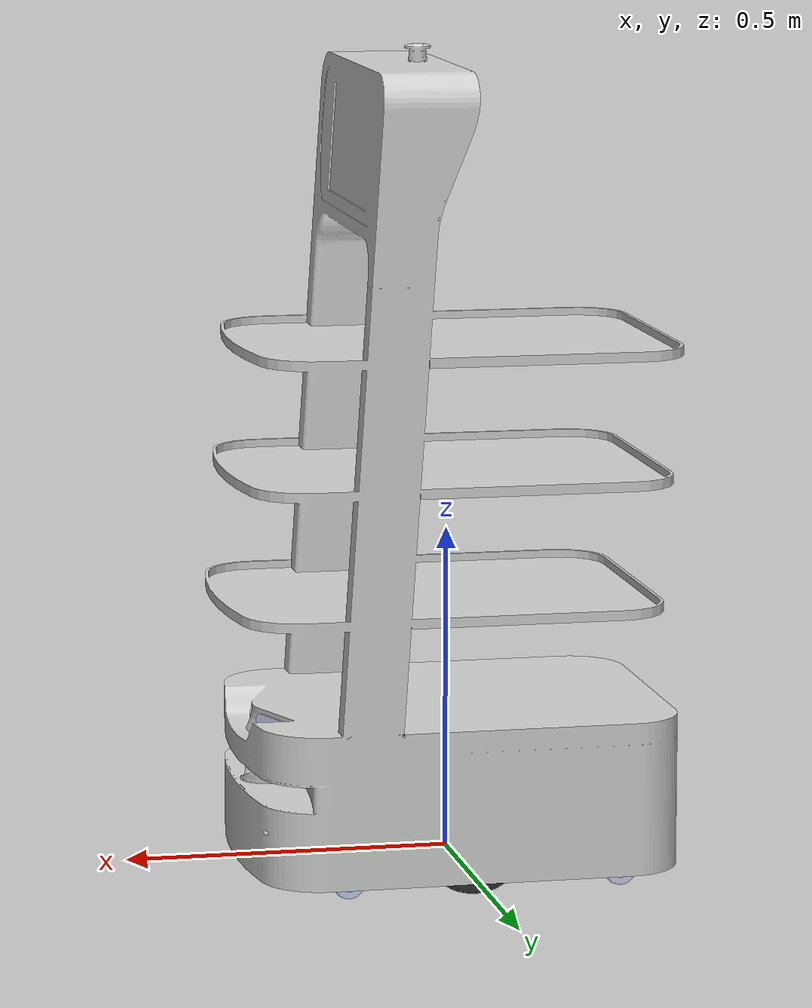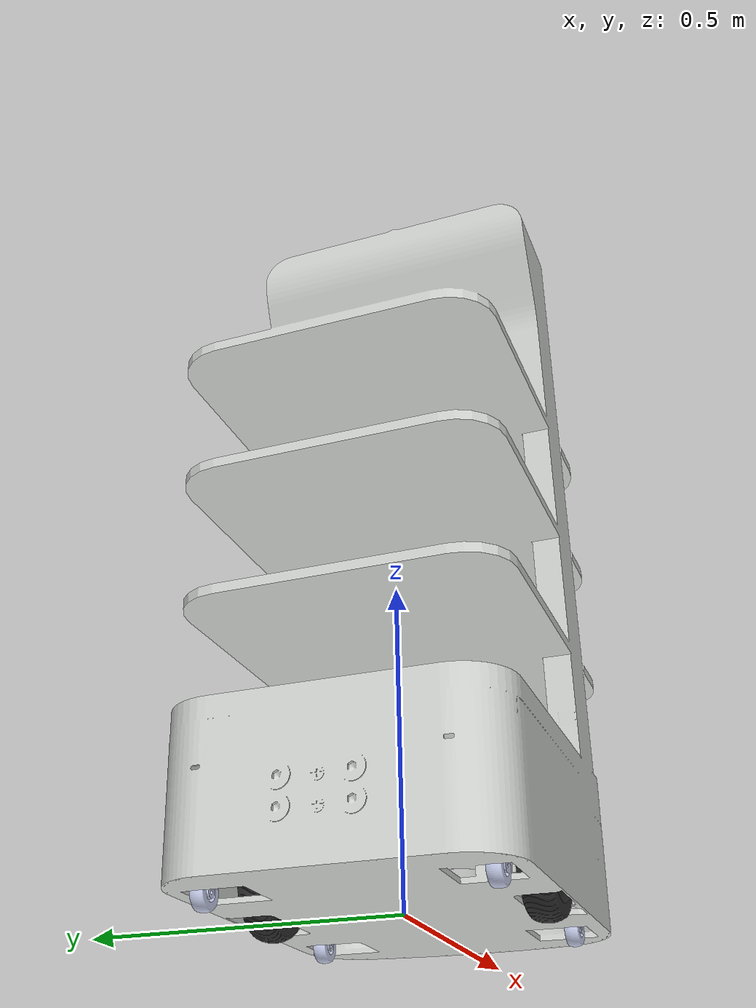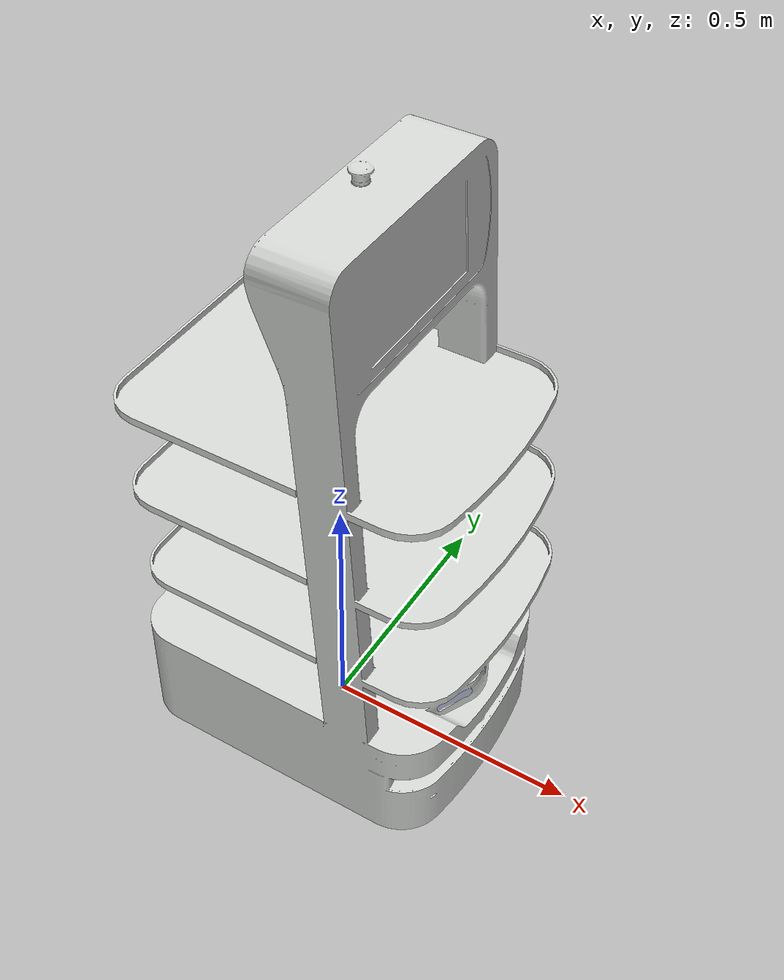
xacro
<?xml version="1.0"?>
<robot xmlns:xacro="http://www.ros.org/wiki/xacro" name="d_bot">

    <xacro:macro name="default_inertial" params="mass">
        <inertial>
            <mass value="${mass}" />
            <inertia ixx="1.0" ixy="0.0" ixz="0.0" iyy="1.0" iyz="0.0" izz="1.0" />
        </inertial>
    </xacro:macro>

    <!-- using inertial  -->

  <!-- base_link -->
  <link
    name="base_link">
    <xacro:default_inertial mass="100"/>
    <visual>
      <origin
        xyz="0 0 0"
        rpy="0 0 0" />
      <geometry>
        <mesh
          filename="package://d_bot_description/meshes/base_link.STL" />
      </geometry>
      <material
        name="">
        <color
          rgba="0.827450980392157 0.83921568627451 0.827450980392157 1" />
      </material>
    </visual>
    <collision>
      <origin
        xyz="0 0 0"
        rpy="0 0 0" />
      <geometry>
        <mesh
          filename="package://d_bot_description/meshes/base_link.STL" />
      </geometry>
    </collision>
  </link>

  <!-- lidar link and joint -->
  <link
    name="lidar_link">
    <inertial>
      <origin
        xyz="0.279194541394812 -1.49381448597552E-05 0.122298548059415"
        rpy="0 0 0" />
      <mass
        value="0.165382751635992" />
      <inertia
        ixx="7.88651836105336E-05"
        ixy="4.84717640920877E-08"
        ixz="2.18479443959794E-06"
        iyy="7.51902914938724E-05"
        iyz="2.88601572510436E-08"
        izz="0.000109946753058708" />
    </inertial>
    <visual>
      <origin
        xyz="-0.279194541394812 1.49381448597552E-05 -0.122298548059415"
        rpy="0 0 0" />
      <geometry>
        <mesh
          filename="package://d_bot_description/meshes/lidar_link.STL" />
      </geometry>
      <material
        name="">
        <color
          rgba="0.752941176470588 0.752941176470588 0.752941176470588 0.4" />
      </material>
    </visual>
    <collision>
      <origin
        xyz="-0.279194541394812 1.49381448597552E-05 -0.122298548059415"
        rpy="0 0 0" />
      <geometry>
        <mesh
          filename="package://d_bot_description/meshes/lidar_link.STL" />
      </geometry>
    </collision>
  </link>
  <joint
    name="lidar_link_joint"
    type="fixed">
    <origin
      xyz="0.279194541394812 -1.49381448597552E-05 0.122298548059415"
      rpy="0 0 0" />
    <parent
      link="base_link" />
    <child
      link="lidar_link" />
    <axis
      xyz="1 0 0" />
  </joint>

  <!-- real_sense_left link and joint -->
  <link
    name="rs_left">
    <inertial>
      <origin
        xyz="0.274555027589029 0.0594512444419123 0.217391938332195"
        rpy="0 0 0" />
      <mass
        value="0.0447521571009435" />
      <inertia
        ixx="2.39114045668301E-05"
        ixy="8.20326286217048E-06"
        ixz="-1.82111380306059E-08"
        iyy="7.31204727336871E-06"
        iyz="1.80836025822923E-08"
        izz="2.73608190095255E-05" />
    </inertial>
    <visual>
      <origin
        xyz="-0.274555027589029 -0.0594512444419123 -0.217391938332195"
        rpy="0 0 0" />
      <geometry>
        <mesh
          filename="package://d_bot_description/meshes/rs_left.STL" />
      </geometry>
      <material
        name="">
        <color
          rgba="0.792156862745098 0.819607843137255 0.933333333333333 1" />
      </material>
    </visual>
    <collision>
      <origin
        xyz="-0.274555027589029 -0.0594512444419123 -0.217391938332195"
        rpy="0 0 0" />
      <geometry>
        <mesh
          filename="package://d_bot_description/meshes/rs_left.STL" />
      </geometry>
    </collision>
  </link>
  <joint
    name="rs_left_joint"
    type="fixed">
    <origin
      xyz="0.274555027589029 0.0594512444419123 0.217391938332195"
      rpy="0 0 0" />
    <parent
      link="base_link" />
    <child
      link="rs_left" />
    <axis
      xyz="0 0 0" />
  </joint>

  <!-- real_sense_right link and joint -->
  <link
    name="rs_right">
    <inertial>
      <origin
        xyz="0.273134158939021 -0.0563363041663852 0.215391956342575"
        rpy="0 0 0" />
      <mass
        value="0.0447522720440084" />
      <inertia
        ixx="2.28893414689802E-05"
        ixy="-9.12224588442263E-06"
        ixz="1.2674636414842E-09"
        iyy="8.33417328604517E-06"
        iyz="2.56207062416853E-08"
        izz="2.73608662757534E-05" />
    </inertial>
    <visual>
      <origin
        xyz="-0.273134158939021 0.0563363041663852 -0.215391956342575"
        rpy="0 0 0" />
      <geometry>
        <mesh
          filename="package://d_bot_description/meshes/rs_right.STL" />
      </geometry>
      <material
        name="">
        <color
          rgba="0.792156862745098 0.819607843137255 0.933333333333333 1" />
      </material>
    </visual>
    <collision>
      <origin
        xyz="-0.273134158939021 0.0563363041663852 -0.215391956342575"
        rpy="0 0 0" />
      <geometry>
        <mesh
          filename="package://d_bot_description/meshes/rs_right.STL" />
      </geometry>
    </collision>
  </link>
  <joint
    name="rs_right_joint"
    type="fixed">
    <origin
      xyz="0.273134158939021 -0.0563363041663852 0.215391956342575"
      rpy="0 0 0" />
    <parent
      link="base_link" />
    <child
      link="rs_right" />
    <axis
      xyz="0 0 0" />
  </joint>

  <!-- caster_front_left link and joint -->
  <link
    name="caster_fl">
    <xacro:default_inertial mass="100"/>
    <visual>
      <origin
        xyz="-0.191862541507397 -0.197610528427432 -0.00130276285386216"
        rpy="0 0 0" />
      <geometry>
        <mesh
          filename="package://d_bot_description/meshes/caster_fl.STL" />
      </geometry>
      <material
        name="">
        <color
          rgba="0.792156862745098 0.819607843137255 0.933333333333333 1" />
      </material>
    </visual>
    <collision>
      <origin
        xyz="-0.191862541507397 -0.197610528427432 -0.00130276285386216"
        rpy="0 0 0" />
      <geometry>
        <mesh
          filename="package://d_bot_description/meshes/caster_fl.STL" />
      </geometry>
    </collision>
  </link>
  <joint
    name="caster_fl_joint"
    type="continuous">
    <origin
      xyz="0.191862541507397 0.197610528427432 0.00130276285386216"
      rpy="0 0 0" />
    <parent
      link="base_link" />
    <child
      link="caster_fl" />
    <axis
      xyz="0 1 0" />
  </joint>

  <!-- caster_front_right link and joint -->
  <link
    name="caster_fr">
    <xacro:default_inertial mass="100"/>
    <visual>
      <origin
        xyz="-0.191862541507396 0.197389471572568 -0.0013027628538621"
        rpy="0 0 0" />
      <geometry>
        <mesh
          filename="package://d_bot_description/meshes/caster_fr.STL" />
      </geometry>
      <material
        name="">
        <color
          rgba="0.792156862745098 0.819607843137255 0.933333333333333 1" />
      </material>
    </visual>
    <collision>
      <origin
        xyz="-0.191862541507396 0.197389471572568 -0.0013027628538621"
        rpy="0 0 0" />
      <geometry>
        <mesh
          filename="package://d_bot_description/meshes/caster_fr.STL" />
      </geometry>
    </collision>
  </link>
  <joint
    name="caster_fr_joint"
    type="continuous">
    <origin
      xyz="0.191862541507396 -0.197389471572568 0.0013027628538621"
      rpy="0 0 0" />
    <parent
      link="base_link" />
    <child
      link="caster_fr" />
    <axis
      xyz="0 1 0" />
  </joint>

<!-- caster_rear_right link and joint -->
  <link
    name="caster_rr">
    <xacro:default_inertial mass="100"/>
    <visual>
      <origin
        xyz="0.228137458492605 0.197389471572567 -0.00130276285386094"
        rpy="0 0 0" />
      <geometry>
        <mesh
          filename="package://d_bot_description/meshes/caster_rr.STL" />
      </geometry>
      <material
        name="">
        <color
          rgba="0.792156862745098 0.819607843137255 0.933333333333333 1" />
      </material>
    </visual>
    <collision>
      <origin
        xyz="0.228137458492605 0.197389471572567 -0.00130276285386094"
        rpy="0 0 0" />
      <geometry>
        <mesh
          filename="package://d_bot_description/meshes/caster_rr.STL" />
      </geometry>
    </collision>
  </link>
  <joint
    name="caster_rr_joint"
    type="continuous">
    <origin
      xyz="-0.228137458492605 -0.197389471572567 0.00130276285386094"
      rpy="0 0 0" />
    <parent
      link="base_link" />
    <child
      link="caster_rr" />
    <axis
      xyz="0 1 0" />
  </joint>

  <!-- caster_rear_left link and joint -->
  <link
    name="caster_rl">
    <xacro:default_inertial mass="100"/>
    <visual>
      <origin
        xyz="0.228137458492603 -0.197610528427433 -0.00130276285386072"
        rpy="0 0 0" />
      <geometry>
        <mesh
          filename="package://d_bot_description/meshes/caster_rl.STL" />
      </geometry>
      <material
        name="">
        <color
          rgba="0.792156862745098 0.819607843137255 0.933333333333333 1" />
      </material>
    </visual>
    <collision>
      <origin
        xyz="0.228137458492603 -0.197610528427433 -0.00130276285386072"
        rpy="0 0 0" />
      <geometry>
        <mesh
          filename="package://d_bot_description/meshes/caster_rl.STL" />
      </geometry>
    </collision>
  </link>
  <joint
    name="caster_rl_joint"
    type="continuous">
    <origin
      xyz="-0.228137458492603 0.197610528427433 0.00130276285386072"
      rpy="0 0 0" />
    <parent
      link="base_link" />
    <child
      link="caster_rl" />
    <axis
      xyz="0 1 0" />
  </joint>

  <!-- drive_wheel_left_link and joint -->
  <link
    name="drive_wheel_left">
    <xacro:default_inertial mass="120"/>
    <visual>
      <origin
        xyz="7.34417430403589E-06 -0.204110516837841 -0.0500007440772356"
        rpy="0 0 0" />
      <geometry>
        <mesh
          filename="package://d_bot_description/meshes/drive_wheel_left.STL" />
      </geometry>
      <material
        name="">
        <color
          rgba="0.2 0.2 0.2 1" />
      </material>
    </visual>
    <collision>
      <origin
        xyz="7.34417430403589E-06 -0.204110516837841 -0.0500007440772356"
        rpy="0 0 0" />
      <geometry>
        <mesh
          filename="package://d_bot_description/meshes/drive_wheel_left.STL" />
      </geometry>
    </collision>
  </link>
  <!-- xyz="-7.34417430403589E-06 0.204110516837841 0.0500007440772356" -->
  <joint
    name="drive_wheel_left_joint"
    type="continuous">
    <origin
      xyz="-7.34417430403589E-06 0.204110516837841 0.0578240000"
      rpy="0 0 0" />
    <parent
      link="base_link" />
    <child
      link="drive_wheel_left" />
    <axis
      xyz="0 1 0" />
  </joint>

  <!-- drive_wheel_right_link and joint -->
  <link
    name="drive_wheel_right">
    <xacro:default_inertial mass="120"/>
    <visual>
      <origin
        xyz="-7.34417430392487E-06 0.204110516837841 -0.0500007440772355"
        rpy="0 0 0" />
      <geometry>
        <mesh
          filename="package://d_bot_description/meshes/drive_wheel_right.STL" />
      </geometry>
      <material
        name="">
        <color
          rgba="0.2 0.2 0.2 1" />
      </material>
    </visual>
    <collision>
      <origin
        xyz="-7.34417430392487E-06 0.204110516837841 -0.0500007440772355"
        rpy="0 0 0" />
      <geometry>
        <mesh
          filename="package://d_bot_description/meshes/drive_wheel_right.STL" />
      </geometry>
    </collision>
  </link>
  <joint
    name="drive_wheel_right_joint"
    type="continuous">
    <origin
      xyz="7.34417430392487E-06 -0.204110516837841 0.0578240000"
      rpy="0 0 0" />
    <parent
      link="base_link" />
    <child
      link="drive_wheel_right" />
    <axis
      xyz="0 1 0" />
  </joint>

  <!-- for left drive wheel -->

  <!-- This block provides the simulator (Gazebo) with information on a few additional
  physical properties. See http://gazebosim.org/tutorials/?tut=ros_urdf for more-->
  <gazebo reference="drive_wheel_left">
      <mu1 value="200.0"/>
      <mu2 value="100.0"/>
      <kp value="10000000.0" />
      <kd value="1.0" />
      <material>Gazebo/Grey</material>
  </gazebo>

  <!-- This block connects the wheel joint to an actuator (motor), which informs both
  simulation and visualization of the robot -->
  <transmission name="drive_wheel_left_trans">
      <type>transmission_interface/SimpleTransmission</type>
      <actuator name="drive_wheel_left_motor">
          <mechanicalReduction>1</mechanicalReduction>
      </actuator>
      <joint name="drive_wheel_left_joint">
          <hardwareInterface>hardware_interface/VelocityJointInterface</hardwareInterface>
      </joint>
  </transmission>

  <!-- for right drive wheel -->

  <!-- This block provides the simulator (Gazebo) with information on a few additional
  physical properties. See http://gazebosim.org/tutorials/?tut=ros_urdf for more-->
  <gazebo reference="drive_wheel_right">
      <mu1 value="200.0"/>
      <mu2 value="100.0"/>
      <kp value="10000000.0" />
      <kd value="1.0" />
      <material>Gazebo/Grey</material>
  </gazebo>

  <!-- This block connects the wheel joint to an actuator (motor), which informs both
  simulation and visualization of the robot -->
  <transmission name="drive_wheel_right_trans">
      <type>transmission_interface/SimpleTransmission</type>
      <actuator name="drive_wheel_right_motor">
          <mechanicalReduction>1</mechanicalReduction>
      </actuator>
      <joint name="drive_wheel_right_joint">
          <hardwareInterface>hardware_interface/VelocityJointInterface</hardwareInterface>
      </joint>
  </transmission>

  <!-- Gazebo plugin for ROS Control -->
  <gazebo>

      <plugin name="gazebo_ros_control" filename="libgazebo_ros_control.so">
          <robotNamespace>/</robotNamespace>
      </plugin>

  </gazebo>

</robot>
